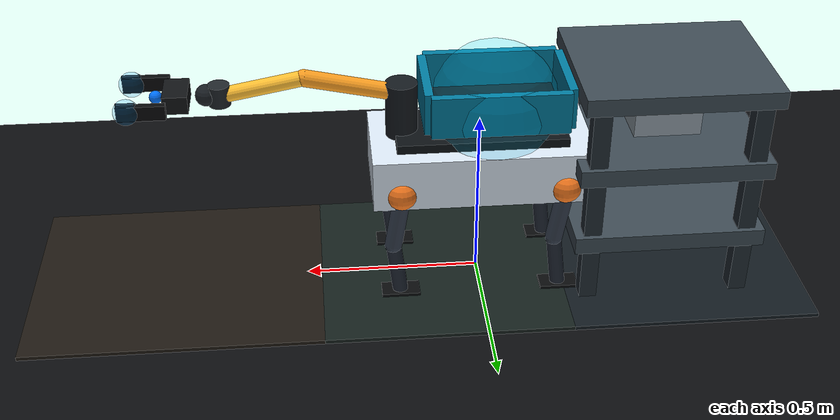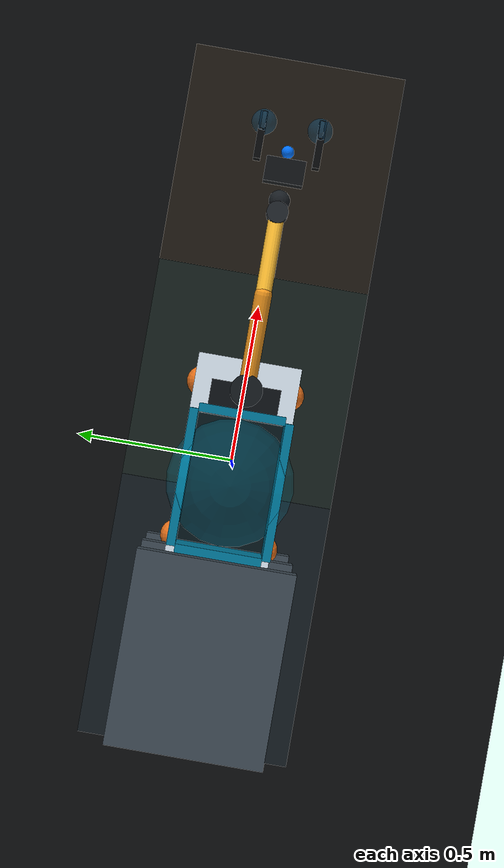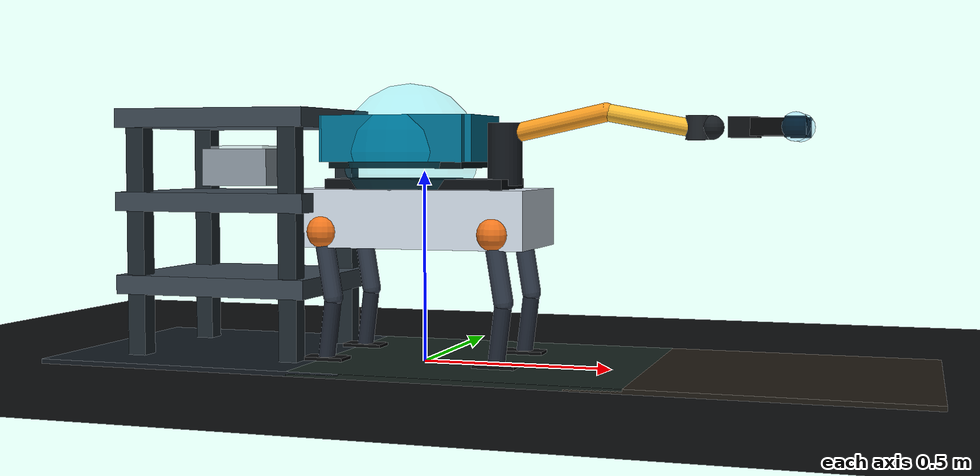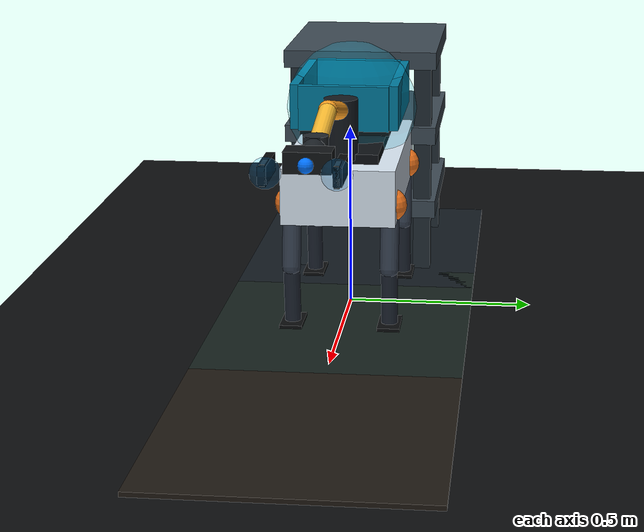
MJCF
<mujoco model="warehouse_quadbot_physics_evidence">
  <compiler angle="radian"/>

  <option timestep="0.005"/>

  <visual>
    <global offwidth="960" offheight="540"/>
  </visual>

  <worldbody>
    <geom name="floor" size="0 0 0.05" type="plane" friction="0.9 0.05 0.02" rgba="0.045 0.05 0.057 1"/>
    <geom name="tile_shelf" size="0.42 0.34 0.006" pos="-0.52 0 0.006" type="box" contype="0" conaffinity="0" rgba="0.07 0.1 0.125 1"/>
    <geom name="tile_robot" size="0.42 0.34 0.006" pos="0.18 0 0.006" type="box" contype="0" conaffinity="0" rgba="0.08 0.125 0.11 1"/>
    <geom name="tile_handoff" size="0.42 0.34 0.006" pos="0.88 0 0.006" type="box" contype="0" conaffinity="0" rgba="0.115 0.095 0.07 1"/>
    <geom name="shelf_post_0" size="0.025 0.025 0.32" pos="-0.74 -0.18 0.32" type="box" friction="0.8 0.05 0.02" rgba="0.13 0.17 0.2 1"/>
    <geom name="shelf_post_1" size="0.025 0.025 0.32" pos="-0.74 0.18 0.32" type="box" friction="0.8 0.05 0.02" rgba="0.13 0.17 0.2 1"/>
    <geom name="shelf_post_2" size="0.025 0.025 0.32" pos="-0.3 -0.18 0.32" type="box" friction="0.8 0.05 0.02" rgba="0.13 0.17 0.2 1"/>
    <geom name="shelf_post_3" size="0.025 0.025 0.32" pos="-0.3 0.18 0.32" type="box" friction="0.8 0.05 0.02" rgba="0.13 0.17 0.2 1"/>
    <geom name="shelf_deck_0" size="0.27 0.22 0.025" pos="-0.52 0 0.2" type="box" friction="0.8 0.05 0.02" rgba="0.24 0.29 0.33 1"/>
    <geom name="shelf_deck_1" size="0.27 0.22 0.025" pos="-0.52 0 0.42" type="box" friction="0.8 0.05 0.02" rgba="0.24 0.29 0.33 1"/>
    <geom name="shelf_deck_2" size="0.27 0.22 0.025" pos="-0.52 0 0.64" type="box" friction="0.8 0.05 0.02" rgba="0.24 0.29 0.33 1"/>
    <light pos="-1 -2 3.5" dir="0.222277 0.400099 -0.889108" diffuse="0.95 0.95 0.92"/>
    <light pos="1.5 1 2.2" dir="-0.365148 -0.182574 -0.912871" diffuse="0.45 0.55 0.7"/>
    <body name="package" pos="-0.52 0 0.51">
      <joint name="package_freejoint" type="free"/>
      <geom name="package_geom" size="0.095 0.07 0.05" type="box" friction="1 0.08 0.03" mass="4" rgba="0.58 0.63 0.67 1"/>
      <geom name="package_metal_highlight" size="0.0779 0.0574 0.004" pos="0 0 0.054" type="box" contype="0" conaffinity="0" rgba="0.85 0.9 0.94 0.55"/>
      <site name="package_site" pos="0 0 0" size="0.016" rgba="1 0.85 0.1 0.9"/>
    </body>
    <body name="a_torso" pos="0 0 0.38">
      <joint name="a_floating_base" type="free"/>
      <geom name="a_torso_shell" size="0.31 0.15 0.075" type="box" mass="8" rgba="0.86 0.91 0.96 1"/>
      <geom name="a_spine_dark" size="0.24 0.1 0.018" pos="0 0 0.083" type="box" mass="0.3" rgba="0.05 0.065 0.08 1"/>
      <geom name="a_basket_floor" size="0.18 0.12 0.016" pos="-0.04 0 0.145" type="box" friction="0.95 0.05 0.02" mass="0.2" rgba="0.02 0.08 0.1 1"/>
      <geom name="a_basket_left_rail" size="0.19 0.012 0.06" pos="-0.04 0.132 0.205" type="box" friction="0.95 0.05 0.02" mass="0.08" rgba="0 0.48 0.62 1"/>
      <geom name="a_basket_right_rail" size="0.19 0.012 0.06" pos="-0.04 -0.132 0.205" type="box" friction="0.95 0.05 0.02" mass="0.08" rgba="0 0.48 0.62 1"/>
      <geom name="a_basket_front_rail" size="0.012 0.12 0.06" pos="0.155 0 0.205" type="box" friction="0.95 0.05 0.02" mass="0.08" rgba="0 0.48 0.62 1"/>
      <geom name="a_basket_back_rail" size="0.012 0.12 0.06" pos="-0.235 0 0.205" type="box" friction="0.95 0.05 0.02" mass="0.08" rgba="0 0.48 0.62 1"/>
      <site name="a_basket_payload_site" pos="-0.04 0 0.218" size="0.018" rgba="0.1 0.9 0.8 0.8"/>
      <site name="a_basket_touch_site" pos="-0.04 0 0.17" size="0.18" rgba="0 0.8 1 0.08"/>
      <body name="a_fl_hip_roll_body" pos="0.23 0.13 -0.035">
        <joint name="a_fl_hip_roll" pos="0 0 0" axis="1 0 0" limited="true" range="-0.00959931 0.00959931" damping="0.25"/>
        <geom name="a_fl_hip_motor" size="0.045" mass="0.25" rgba="0.95 0.47 0.12 1"/>
        <body name="a_fl_upper_body" pos="0 0 -0.015">
          <joint name="a_fl_hip_pitch" pos="0 0 0" axis="0 1 0" limited="true" range="-0.0191986 0.0218166" damping="0.25"/>
          <geom name="a_fl_upper_link" size="0.025 0.0785016" pos="0.0125 0 -0.0775" quat="0.996805 0 -0.0798714 0" type="capsule" mass="0.45" rgba="0.2 0.24 0.3 1"/>
          <body name="a_fl_lower_body" pos="0.025 0 -0.155">
            <joint name="a_fl_knee_pitch" pos="0 0 0" axis="0 1 0" limited="true" range="-0.0340339 -0.00436332" damping="0.22"/>
            <geom name="a_fl_lower_link" size="0.022 0.0831039" pos="-0.01 0 -0.0825" quat="0.998182 0 0.0602753 0" type="capsule" mass="0.35" rgba="0.13 0.16 0.21 1"/>
            <body name="a_fl_foot_body" pos="-0.02 0 -0.172">
              <geom name="a_fl_foot" size="0.055 0.03 0.018" type="box" friction="1.1 0.08 0.03" mass="0.2" rgba="0.035 0.04 0.045 1"/>
            </body>
          </body>
        </body>
      </body>
      <body name="a_fr_hip_roll_body" pos="0.23 -0.13 -0.035">
        <joint name="a_fr_hip_roll" pos="0 0 0" axis="1 0 0" limited="true" range="-0.00959931 0.00959931" damping="0.25"/>
        <geom name="a_fr_hip_motor" size="0.045" mass="0.25" rgba="0.95 0.47 0.12 1"/>
        <body name="a_fr_upper_body" pos="0 0 -0.015">
          <joint name="a_fr_hip_pitch" pos="0 0 0" axis="0 1 0" limited="true" range="-0.0191986 0.0218166" damping="0.25"/>
          <geom name="a_fr_upper_link" size="0.025 0.0785016" pos="0.0125 0 -0.0775" quat="0.996805 0 -0.0798714 0" type="capsule" mass="0.45" rgba="0.2 0.24 0.3 1"/>
          <body name="a_fr_lower_body" pos="0.025 0 -0.155">
            <joint name="a_fr_knee_pitch" pos="0 0 0" axis="0 1 0" limited="true" range="-0.0340339 -0.00436332" damping="0.22"/>
            <geom name="a_fr_lower_link" size="0.022 0.0831039" pos="-0.01 0 -0.0825" quat="0.998182 0 0.0602753 0" type="capsule" mass="0.35" rgba="0.13 0.16 0.21 1"/>
            <body name="a_fr_foot_body" pos="-0.02 0 -0.172">
              <geom name="a_fr_foot" size="0.055 0.03 0.018" type="box" friction="1.1 0.08 0.03" mass="0.2" rgba="0.035 0.04 0.045 1"/>
            </body>
          </body>
        </body>
      </body>
      <body name="a_rl_hip_roll_body" pos="-0.23 0.13 -0.035">
        <joint name="a_rl_hip_roll" pos="0 0 0" axis="1 0 0" limited="true" range="-0.00959931 0.00959931" damping="0.25"/>
        <geom name="a_rl_hip_motor" size="0.045" mass="0.25" rgba="0.95 0.47 0.12 1"/>
        <body name="a_rl_upper_body" pos="0 0 -0.015">
          <joint name="a_rl_hip_pitch" pos="0 0 0" axis="0 1 0" limited="true" range="-0.0191986 0.0218166" damping="0.25"/>
          <geom name="a_rl_upper_link" size="0.025 0.0785016" pos="0.0125 0 -0.0775" quat="0.996805 0 -0.0798714 0" type="capsule" mass="0.45" rgba="0.2 0.24 0.3 1"/>
          <body name="a_rl_lower_body" pos="0.025 0 -0.155">
            <joint name="a_rl_knee_pitch" pos="0 0 0" axis="0 1 0" limited="true" range="-0.0340339 -0.00436332" damping="0.22"/>
            <geom name="a_rl_lower_link" size="0.022 0.0831039" pos="-0.01 0 -0.0825" quat="0.998182 0 0.0602753 0" type="capsule" mass="0.35" rgba="0.13 0.16 0.21 1"/>
            <body name="a_rl_foot_body" pos="-0.02 0 -0.172">
              <geom name="a_rl_foot" size="0.055 0.03 0.018" type="box" friction="1.1 0.08 0.03" mass="0.2" rgba="0.035 0.04 0.045 1"/>
            </body>
          </body>
        </body>
      </body>
      <body name="a_rr_hip_roll_body" pos="-0.23 -0.13 -0.035">
        <joint name="a_rr_hip_roll" pos="0 0 0" axis="1 0 0" limited="true" range="-0.00959931 0.00959931" damping="0.25"/>
        <geom name="a_rr_hip_motor" size="0.045" mass="0.25" rgba="0.95 0.47 0.12 1"/>
        <body name="a_rr_upper_body" pos="0 0 -0.015">
          <joint name="a_rr_hip_pitch" pos="0 0 0" axis="0 1 0" limited="true" range="-0.0191986 0.0218166" damping="0.25"/>
          <geom name="a_rr_upper_link" size="0.025 0.0785016" pos="0.0125 0 -0.0775" quat="0.996805 0 -0.0798714 0" type="capsule" mass="0.45" rgba="0.2 0.24 0.3 1"/>
          <body name="a_rr_lower_body" pos="0.025 0 -0.155">
            <joint name="a_rr_knee_pitch" pos="0 0 0" axis="0 1 0" limited="true" range="-0.0340339 -0.00436332" damping="0.22"/>
            <geom name="a_rr_lower_link" size="0.022 0.0831039" pos="-0.01 0 -0.0825" quat="0.998182 0 0.0602753 0" type="capsule" mass="0.35" rgba="0.13 0.16 0.21 1"/>
            <body name="a_rr_foot_body" pos="-0.02 0 -0.172">
              <geom name="a_rr_foot" size="0.055 0.03 0.018" type="box" friction="1.1 0.08 0.03" mass="0.2" rgba="0.035 0.04 0.045 1"/>
            </body>
          </body>
        </body>
      </body>
      <body name="a_arm_base" pos="0.22 0 0.125">
        <joint name="a_arm_base_yaw" pos="0 0 0" axis="0 0 1" limited="true" range="-0.0471239 0.0471239" damping="0.35"/>
        <geom name="a_arm_base_column" size="0.045 0.08" pos="0 0 0.04" type="cylinder" mass="0.35" rgba="0.08 0.1 0.12 1"/>
        <body name="a_arm_shoulder" pos="0.035 0 0.095">
          <joint name="a_arm_shoulder_pitch" pos="0 0 0" axis="0 1 0" limited="true" range="-0.0287979 0.0218166" damping="0.35"/>
          <geom name="a_arm_upper_link" size="0.024 0.117686" pos="0.115 0 0.025" quat="0.627523 0 -0.778598 0" type="capsule" mass="0.45" rgba="0.98 0.62 0.13 1"/>
          <body name="a_arm_elbow" pos="0.23 0 0.05">
            <joint name="a_arm_elbow_pitch" pos="0 0 0" axis="0 1 0" limited="true" range="-0.0322886 0.0287979" damping="0.35"/>
            <geom name="a_arm_forearm_link" size="0.022 0.106888" pos="0.105 0 -0.02" quat="0.770426 0 -0.63753 0" type="capsule" mass="0.36" rgba="1 0.75 0.2 1"/>
            <body name="a_arm_wrist_pitch_body" pos="0.21 0 -0.04">
              <joint name="a_arm_wrist_pitch" pos="0 0 0" axis="0 1 0" limited="true" range="-0.0279253 0.0279253" damping="0.25"/>
              <geom name="a_arm_wrist_pitch_housing" size="0.03 0.03" pos="0.02 0 0" type="cylinder" mass="0.12" rgba="0.13 0.15 0.17 1"/>
              <body name="a_arm_wrist_roll_body" pos="0.055 0 0">
                <joint name="a_arm_wrist_roll" pos="0 0 0" axis="1 0 0" limited="true" range="-0.0541052 0.0541052" damping="0.2"/>
                <geom name="a_arm_wrist_roll_housing" size="0.03" mass="0.1" rgba="0.1 0.12 0.14 1"/>
                <body name="a_arm_tool_yaw_body" pos="0.045 0 0">
                  <joint name="a_arm_tool_yaw" pos="0 0 0" axis="0 0 1" limited="true" range="-0.0488692 0.0488692" damping="0.2"/>
                  <geom name="a_gripper_palm" size="0.034 0.055 0.025" pos="0.035 0 0" type="box" friction="0.9 0.05 0.02" mass="0.22" rgba="0.065 0.075 0.085 1"/>
                  <site name="a_gripper_site" pos="0.09 0 0" size="0.018" rgba="0 0.45 1 0.9"/>
                  <body name="a_gripper_left_body" pos="0.092 0.082 0">
                    <joint name="a_gripper_left_slide" pos="0 0 0" axis="0 -1 0" type="slide" limited="true" range="0 0.045" damping="0.12"/>
                    <geom name="a_gripper_left_finger" size="0.065 0.01 0.021" pos="0.03 0 0" type="box" friction="1.3 0.08 0.03" mass="0.08" rgba="0.03 0.035 0.04 1"/>
                    <geom name="a_gripper_left_pad" size="0.025 0.006 0.025" pos="0.07 -0.002 0" type="box" friction="1.6 0.1 0.04" mass="0.02" rgba="0.12 0.13 0.13 1"/>
                    <site name="a_gripper_left_touch_site" pos="0.07 -0.004 0" size="0.035" rgba="0 0.6 1 0.08"/>
                  </body>
                  <body name="a_gripper_right_body" pos="0.092 -0.082 0">
                    <joint name="a_gripper_right_slide" pos="0 0 0" axis="0 1 0" type="slide" limited="true" range="0 0.045" damping="0.12"/>
                    <geom name="a_gripper_right_finger" size="0.065 0.01 0.021" pos="0.03 0 0" type="box" friction="1.3 0.08 0.03" mass="0.08" rgba="0.03 0.035 0.04 1"/>
                    <geom name="a_gripper_right_pad" size="0.025 0.006 0.025" pos="0.07 0.002 0" type="box" friction="1.6 0.1 0.04" mass="0.02" rgba="0.12 0.13 0.13 1"/>
                    <site name="a_gripper_right_touch_site" pos="0.07 0.004 0" size="0.035" rgba="0 0.6 1 0.08"/>
                  </body>
                </body>
              </body>
            </body>
          </body>
        </body>
      </body>
    </body>
  </worldbody>

  <actuator>
    <general name="a_fl_hip_roll_motor" joint="a_fl_hip_roll" ctrllimited="true" ctrlrange="-0.55 0.55" biastype="affine" gainprm="140" biasprm="0 -140 -12"/>
    <general name="a_fl_hip_pitch_motor" joint="a_fl_hip_pitch" ctrllimited="true" ctrlrange="-1.1 1.25" biastype="affine" gainprm="140" biasprm="0 -140 -12"/>
    <general name="a_fl_knee_pitch_motor" joint="a_fl_knee_pitch" ctrllimited="true" ctrlrange="-1.95 -0.25" biastype="affine" gainprm="140" biasprm="0 -140 -12"/>
    <general name="a_fr_hip_roll_motor" joint="a_fr_hip_roll" ctrllimited="true" ctrlrange="-0.55 0.55" biastype="affine" gainprm="140" biasprm="0 -140 -12"/>
    <general name="a_fr_hip_pitch_motor" joint="a_fr_hip_pitch" ctrllimited="true" ctrlrange="-1.1 1.25" biastype="affine" gainprm="140" biasprm="0 -140 -12"/>
    <general name="a_fr_knee_pitch_motor" joint="a_fr_knee_pitch" ctrllimited="true" ctrlrange="-1.95 -0.25" biastype="affine" gainprm="140" biasprm="0 -140 -12"/>
    <general name="a_rl_hip_roll_motor" joint="a_rl_hip_roll" ctrllimited="true" ctrlrange="-0.55 0.55" biastype="affine" gainprm="140" biasprm="0 -140 -12"/>
    <general name="a_rl_hip_pitch_motor" joint="a_rl_hip_pitch" ctrllimited="true" ctrlrange="-1.1 1.25" biastype="affine" gainprm="140" biasprm="0 -140 -12"/>
    <general name="a_rl_knee_pitch_motor" joint="a_rl_knee_pitch" ctrllimited="true" ctrlrange="-1.95 -0.25" biastype="affine" gainprm="140" biasprm="0 -140 -12"/>
    <general name="a_rr_hip_roll_motor" joint="a_rr_hip_roll" ctrllimited="true" ctrlrange="-0.55 0.55" biastype="affine" gainprm="140" biasprm="0 -140 -12"/>
    <general name="a_rr_hip_pitch_motor" joint="a_rr_hip_pitch" ctrllimited="true" ctrlrange="-1.1 1.25" biastype="affine" gainprm="140" biasprm="0 -140 -12"/>
    <general name="a_rr_knee_pitch_motor" joint="a_rr_knee_pitch" ctrllimited="true" ctrlrange="-1.95 -0.25" biastype="affine" gainprm="140" biasprm="0 -140 -12"/>
    <general name="a_arm_base_yaw_motor" joint="a_arm_base_yaw" ctrllimited="true" ctrlrange="-2.7 2.7" biastype="affine" gainprm="180" biasprm="0 -180 -10"/>
    <general name="a_arm_shoulder_pitch_motor" joint="a_arm_shoulder_pitch" ctrllimited="true" ctrlrange="-1.65 1.25" biastype="affine" gainprm="180" biasprm="0 -180 -10"/>
    <general name="a_arm_elbow_pitch_motor" joint="a_arm_elbow_pitch" ctrllimited="true" ctrlrange="-1.85 1.65" biastype="affine" gainprm="180" biasprm="0 -180 -10"/>
    <general name="a_arm_wrist_pitch_motor" joint="a_arm_wrist_pitch" ctrllimited="true" ctrlrange="-1.6 1.6" biastype="affine" gainprm="180" biasprm="0 -180 -10"/>
    <general name="a_arm_wrist_roll_motor" joint="a_arm_wrist_roll" ctrllimited="true" ctrlrange="-3.1 3.1" biastype="affine" gainprm="180" biasprm="0 -180 -10"/>
    <general name="a_arm_tool_yaw_motor" joint="a_arm_tool_yaw" ctrllimited="true" ctrlrange="-2.8 2.8" biastype="affine" gainprm="180" biasprm="0 -180 -10"/>
    <general name="a_gripper_left_slide_motor" joint="a_gripper_left_slide" ctrllimited="true" ctrlrange="0 0.045" biastype="affine" gainprm="180" biasprm="0 -180 -10"/>
    <general name="a_gripper_right_slide_motor" joint="a_gripper_right_slide" ctrllimited="true" ctrlrange="0 0.045" biastype="affine" gainprm="180" biasprm="0 -180 -10"/>
  </actuator>

  <sensor>
    <jointpos joint="a_arm_base_yaw" name="a_arm_base_yaw_pos"/>
    <jointpos joint="a_arm_shoulder_pitch" name="a_arm_shoulder_pitch_pos"/>
    <jointpos joint="a_arm_elbow_pitch" name="a_arm_elbow_pitch_pos"/>
    <jointpos joint="a_arm_wrist_pitch" name="a_arm_wrist_pitch_pos"/>
    <jointpos joint="a_arm_wrist_roll" name="a_arm_wrist_roll_pos"/>
    <jointpos joint="a_arm_tool_yaw" name="a_arm_tool_yaw_pos"/>
    <jointpos joint="a_gripper_left_slide" name="a_gripper_left_slide_pos"/>
    <jointpos joint="a_gripper_right_slide" name="a_gripper_right_slide_pos"/>
    <framepos objtype="site" objname="a_gripper_site" name="a_gripper_framepos"/>
    <framepos objtype="site" objname="a_basket_payload_site" name="a_basket_framepos"/>
    <touch site="a_gripper_left_touch_site" name="a_left_finger_touch"/>
    <touch site="a_gripper_right_touch_site" name="a_right_finger_touch"/>
    <touch site="a_basket_touch_site" name="a_basket_touch"/>
    <framepos objtype="site" objname="package_site" name="package_framepos"/>
  </sensor>
</mujoco>
